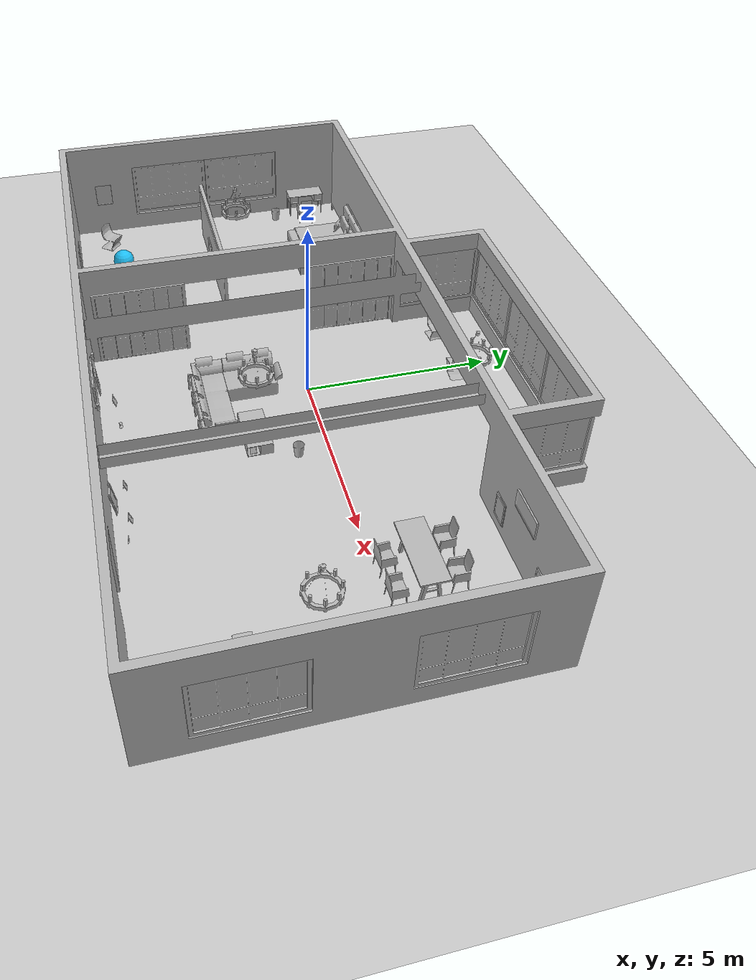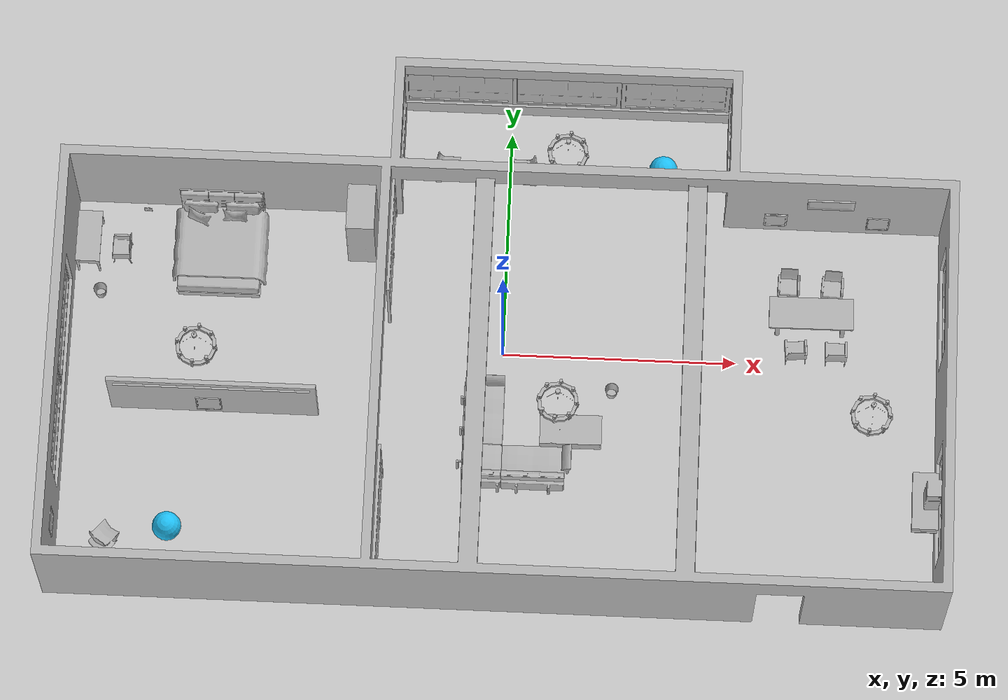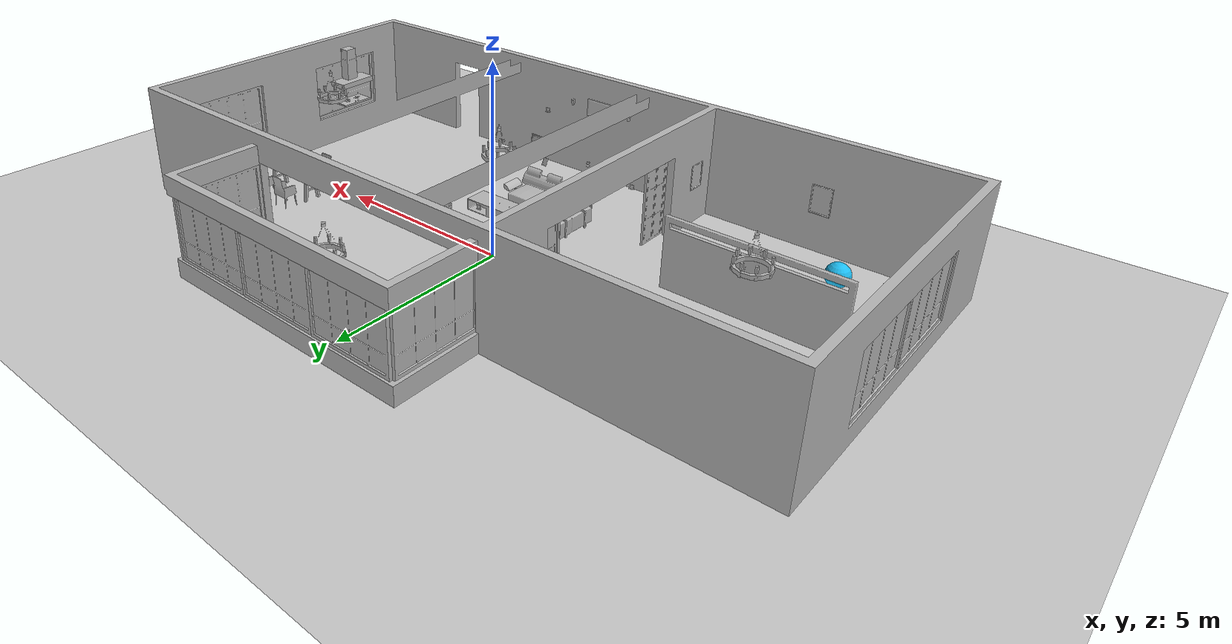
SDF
<sdf version="1.7">
 <world name="default">
  <gravity>0 0 -9.8</gravity>
  <physics type="ode"><max_step_size>0.01</max_step_size><real_time_factor>1</real_time_factor></physics>
  <plugin filename="gz-sim-physics-system" name="gz::sim::systems::Physics"/>
  <plugin filename="gz-sim-user-commands-system" name="gz::sim::systems::UserCommands"/>
  <plugin filename="gz-sim-scene-broadcaster-system" name="gz::sim::systems::SceneBroadcaster"/>
  <plugin filename="gz-sim-sensors-system" name="gz::sim::systems::Sensors">
   <render_engine>ogre2</render_engine>
  </plugin>
  <plugin filename="gz-sim-imu-system" name="gz::sim::systems::Imu"/>
  <model name="ground_plane">
   <static>true</static>
   <link name="link">
    <collision name="collision">
     <geometry><plane><normal>0 0 1</normal><size>200 200</size></plane></geometry>
    </collision>
    <visual name="visual"><geometry><plane><normal>0 0 1</normal><size>200 200</size></plane></geometry></visual>
   </link>
  </model>
  <light type="directional" name="sun">
   <cast_shadows>0</cast_shadows>
   <pose>-5 -3 10 0 0 0</pose>
   <diffuse>1 1 1 1</diffuse>
   <specular>1 1 1 1</specular>
   <direction>0 0 -1</direction>
  </light>
  <include>
   <uri>model://aws_robomaker_residential_Ball_01</uri>
   <name>Ball_01_001</name>
   <pose>3.295503 4.225674 0.318684 0 -0 0</pose>
   <static>true</static>
  </include>
  <include>
   <uri>model://aws_robomaker_residential_Ball_01</uri>
   <name>Ball_01_003</name>
   <pose>-6.945503 -4.22174 0.318684 0 -0 0</pose>
   <static>true</static>
  </include>
  <include>
   <uri>model://aws_robomaker_residential_Bed_01</uri>
   <name>Bed_01_001</name>
   <pose>-6.165067 2.030560 -0.000010 0 -0 0</pose>
   <static>true</static>
  </include>
  <include>
   <uri>model://aws_robomaker_residential_ChairA_01</uri>
   <name>ChairA_01_001</name>
   <pose>7.11516 0.209028 0.024685 1e-06 -0 -1.55607</pose>
   <static>true</static>
  </include>
  <include>
   <uri>model://aws_robomaker_residential_ChairA_01</uri>
   <name>ChairA_01_002</name>
   <pose>6.25506 0.219468 0.011308 0 0 -1.50414</pose>
   <static>true</static>
  </include>
  <include>
   <uri>model://aws_robomaker_residential_ChairA_01</uri>
   <name>ChairA_01_003</name>
   <pose>6.06678 1.68075 0.01 0 -0 1.56986</pose>
   <static>true</static>
  </include>
  <include>
   <uri>model://aws_robomaker_residential_ChairA_01</uri>
   <name>ChairA_01_004</name>
   <pose>7.00277 1.67074 0 0 -0 1.52363</pose>
   <static>true</static>
  </include>
  <include>
   <uri>model://aws_robomaker_residential_ChairA_01</uri>
   <name>ChairA_01_005</name>
   <pose>-8.270940 1.916650 0.036650 0 -0 0</pose>
   <static>true</static>
  </include>
  <include>
   <uri>model://aws_robomaker_residential_ChairD_01</uri>
   <name>ChairD_01_001</name>
   <pose>-1.380775 4.104456 0 0 -0 0</pose>
   <static>true</static>
  </include>
  <include>
   <uri>model://aws_robomaker_residential_ChairD_01</uri>
   <name>ChairD_01_002</name>
   <pose>0.325214 4.104456 0 0 -0 -3.138741</pose>
   <static>true</static>
  </include>
  <include>
   <uri>model://aws_robomaker_residential_ChairD_01</uri>
   <name>ChairD_01_003</name>
   <pose>-8.270775 -4.504456 0 0 -0 0.869673</pose>
   <static>true</static>
  </include>
  <include>
   <uri>model://aws_robomaker_residential_Chandelier_01</uri>
   <name>Chandelier_01_001</name>
   <pose>1.221061 4.155740 1.295000 0 -0 0</pose>
   <static>true</static>
  </include>
  <include>
   <uri>model://aws_robomaker_residential_Chandelier_01</uri>
   <name>Chandelier_01_002</name>
   <pose>-6.451061 -0.692040 1.810000 0 -0 0</pose>
   <static>true</static>
  </include>
  <include>
   <uri>model://aws_robomaker_residential_Chandelier_01</uri>
   <name>Chandelier_01_003</name>
   <pose>7.824061 -1.59 1.7510000 0 -0 0</pose>
   <static>true</static>
  </include>
  <include>
   <uri>model://aws_robomaker_residential_Chandelier_01</uri>
   <name>Chandelier_01_004</name>
   <pose>1.221061 -1.592040 1.7873000 0 -0 0</pose>
   <static>true</static>
  </include>
  <include>
   <uri>model://aws_robomaker_residential_SecurityCamera_01</uri>
   <name>SecurityCamera_01_001</name>
   <pose>0.842134 -4.996294 0.495067 0 -0 -2.841039</pose>
   <static>true</static>
  </include>
  <include>
   <uri>model://aws_robomaker_residential_CoffeeTable_01</uri>
   <name>CoffeeTable_01_001</name>
   <pose>1.512301 -1.733438 0.041983 0.000000 0.000000 0.01000</pose>
   <static>true</static>
  </include>
  <include>
   <uri>model://aws_robomaker_residential_CookingBench_01</uri>
   <name>CookingBench_01_001</name>
   <pose>9.038383 -3.351140 0.903610 0 -0 3.137133</pose>
   <static>true</static>
  </include>
  <include>
   <uri>model://aws_robomaker_residential_KitchenTable_01</uri>
   <name>KitchenTable_01_001</name>
   <pose>6.55269 0.951173 -0.000006 0 -0 -1.564130</pose>
   <static>true</static>
  </include>
  <include>
   <uri>model://aws_robomaker_residential_ReadingDesk_01</uri>
   <name>ReadingDesk_01_001</name>
   <pose>-8.987262 2.057058 0 0 -0 -0.004638</pose>
   <static>true</static>
  </include>
  <include>
   <uri>model://aws_robomaker_residential_FoldingDoor_01</uri>
   <name>FoldingDoor_01_001</name>
   <pose>-2.461096 1.844219 0.041881 0 -0 0</pose>
   <static>true</static>
  </include>
  <include>
   <uri>model://aws_robomaker_residential_FoldingDoor_01</uri>
   <name>FoldingDoor_01_002</name>
   <pose>-2.461096 -4.053320 0.041881 0 -0 0</pose>
   <static>true</static>
  </include>
  <include>
   <uri>model://aws_robomaker_residential_HouseWallB_01</uri>
   <name>HouseWallB_01_001</name>
   <static>true</static>
  </include>
  <include>
   <uri>model://aws_robomaker_residential_LightC_01</uri>
   <name>LightC_01_001</name>
   <pose>1.769567 -5.4443710 2.000000 0 -0 0</pose>
   <static>true</static>
  </include>
  <include>
   <uri>model://aws_robomaker_residential_LightC_01</uri>
   <name>LightC_01_002</name>
   <pose>-0.138245 -5.4443710 2.000000 0 -0 0</pose>
   <static>true</static>
  </include>
  <include>
   <uri>model://aws_robomaker_residential_PortraitA_01</uri>
   <name>PortraitA_01</name>
   <pose>-2.712360 -4.817539 1.00000 0 -0 1.566796</pose>
   <static>true</static>
  </include>
  <include>
   <uri>model://aws_robomaker_residential_PortraitB_01</uri>
   <name>PortraitB_01</name>
   <pose>-1.279683 -5.429630 0.0 -0.076901 0 -3.116718</pose>
   <static>true</static>
  </include>
  <include>
   <uri>model://aws_robomaker_residential_PortraitB_02</uri>
   <name>PortraitB_02</name>
   <pose>5.737017 3.080310 0.300000 0 -0 0</pose>
   <static>true</static>
  </include>
  <include>
   <uri>model://aws_robomaker_residential_PortraitB_03</uri>
   <name>PortraitB_03</name>
   <pose>3.071380 -5.349366 0.005494 -0.168428 0.0 3.104232</pose>
   <static>true</static>
  </include>
  <include>
   <uri>model://aws_robomaker_residential_PortraitA_02</uri>
   <name>PortraitA_02</name>
   <pose>7.937017 3.080310 0.300000 0 -0 3.14</pose>
   <static>true</static>
  </include>
  <include>
   <uri>model://aws_robomaker_residential_PortraitC_01</uri>
   <name>PortraitC_01</name>
   <pose>-9.294904 -4.526084 1.000000 0 -0 1.554734</pose>
   <static>true</static>
  </include>
  <include>
   <uri>model://aws_robomaker_residential_PortraitD_01</uri>
   <name>PortraitD_01</name>
   <pose>0.789763 -5.478725 1.800000 0 -0 3.138531</pose>
   <static>true</static>
  </include>
  <include>
   <uri>model://aws_robomaker_residential_PortraitD_02</uri>
   <name>PortraitD_02</name>
   <pose>6.870181 3.080310 1.488439 0 -0 0</pose>
   <static>true</static>
  </include>
  <include>
   <uri>model://aws_robomaker_residential_PortraitE_01</uri>
   <name>PortraitE_01</name>
   <pose>-5.773094 -5.492466 1.000000 0 -0 3.132627</pose>
   <static>true</static>
  </include>
  <include>
   <uri>model://aws_robomaker_residential_PortraitE_02</uri>
   <name>PortraitE_02</name>
   <pose>-6.193025 -1.590208 0.3 0 -0 0.004290</pose>
   <static>true</static>
  </include>
  <include>
   <uri>model://aws_robomaker_residential_DeskPortraitA_01</uri>
   <name>DeskPortraitA_01</name>
   <pose>-0.036864 -5.110156 0.498660 0 -0 2.927784</pose>
   <static>true</static>
  </include>
  <include>
   <uri>model://aws_robomaker_residential_DeskPortraitA_02</uri>
   <name>DeskPortraitA_02</name>
   <pose>2.046082 -1.892926 0.0703880 -0.018328 -0.000441 1.576216</pose>
   <static>true</static>
  </include>
  <include>
   <uri>model://aws_robomaker_residential_DeskPortraitC_01</uri>
   <name>DeskPortraitC_01</name>
   <pose>-7.746377 2.731075 0.694620 0.000488 -0.000359 -0.055499</pose>
   <static>true</static>
  </include>
  <include>
   <uri>model://aws_robomaker_residential_DeskPortraitC_02</uri>
   <name>DeskPortraitC_02</name>
   <pose>0.964613 -1.586951 0.127676 0.001614 -0.000545 -1.578699</pose>
   <static>true</static>
  </include>
  <include>
   <uri>model://aws_robomaker_residential_DeskPortraitD_01</uri>
   <name>DeskPortraitD_01</name>
   <pose>2.645560 -5.376225 1.573738 0 -0 -3.112826</pose>
   <static>true</static>
  </include>
  <include>
   <uri>model://aws_robomaker_residential_DeskPortraitD_02</uri>
   <name>DeskPortraitD_02</name>
   <pose>-0.589211 -5.109890 0.192145 -0.000015 -0.000174 -3.112544</pose>
   <static>true</static>
  </include>
  <include>
   <uri>model://aws_robomaker_residential_DeskPortraitD_03</uri>
   <name>DeskPortraitD_03</name>
   <pose>1.826729 -1.464881 0.126208 0.000010 0.000006 -3.114380</pose>
   <static>true</static>
  </include>
  <include>
   <uri>model://aws_robomaker_residential_DeskPortraitD_04</uri>
   <name>DeskPortraitD_04</name>
   <pose>4.302132 -5.176568 0.202496 0.007118 -0.000001 3.046683</pose>
   <static>true</static>
  </include>
  <include>
   <uri>model://aws_robomaker_residential_DeskPortraitB_01</uri>
   <name>DeskPortraitB_01</name>
   <pose>3.547376 -5.083898 -0.012660 -0.336622 -0.000001 3.046741</pose>
   <static>true</static>
  </include>
  <include>
   <uri>model://aws_robomaker_residential_DeskPortraitB_02</uri>
   <name>DeskPortraitB_02</name>
   <pose>2.486270 -5.102525 -0.012660 -0.336621 0.000000 3.046798</pose>
   <static>true</static>
  </include>
  <include>
   <uri>model://aws_robomaker_residential_Rangehood_01</uri>
   <name>Rangehood_01_001</name>
   <pose>9.019794 -3.369940 1.507605 0 -0 0</pose>
   <static>true</static>
  </include>
  <include>
   <uri>model://aws_robomaker_residential_SofaC_01</uri>
   <name>SofaC_01_001</name>
   <pose>0.330699 -1.902792 0.065992 0.000000 0.000000 1.571733</pose>
   <static>true</static>
  </include>
  <include>
   <uri>model://aws_robomaker_residential_Trash_01</uri>
   <name>Trash_01_001</name>
   <pose>2.360151 -0.796238 0.011 0 -0 0</pose>
   <static>true</static>
  </include>
  <include>
   <uri>model://aws_robomaker_residential_Trash_01</uri>
   <name>Trash_01_002</name>
   <pose>-8.704151 1.00058 0.011 0 -0 0</pose>
   <static>true</static>
  </include>
  <include>
   <uri>model://aws_robomaker_residential_RoomWall_01</uri>
   <name>RoomWall_01_001</name>
   <pose>-6.097550 -1.496180 0.028124 0 -0 0</pose>
   <static>true</static>
  </include>
  <include>
   <uri>model://aws_robomaker_residential_Wardrobe_01</uri>
   <name>Wardrobe_01_001</name>
   <pose>-3.146710 2.476204 0.000704 0 -0 -1.569673</pose>
   <static>true</static>
  </include>
  <include>
   <uri>model://aws_robomaker_residential_RoomWindow_01</uri>
   <name>RoomWindow_01_001</name>
   <pose>-9.418600 -0.026285 0.502739 0 -0 0</pose>
   <static>true</static>
  </include>
  <include>
   <uri>model://aws_robomaker_residential_RoomWindow_01</uri>
   <name>RoomWindow_01_002</name>
   <pose>-9.418600 -2.374090 0.502739 0 -0 0</pose>
   <static>true</static>
  </include>
  <include>
   <uri>model://aws_robomaker_residential_RoomWindow_01</uri>
   <name>RoomWindow_01_003</name>
   <pose>9.422616 -3.373981 0.502739 0 -0 -3.136099</pose>
   <static>true</static>
  </include>
  <include>
   <uri>model://aws_robomaker_residential_RoomWindow_01</uri>
   <name>RoomWindow_01_004</name>
   <pose>9.422558 0.968520 0.496581 0 -0 -3.136099</pose>
   <static>true</static>
  </include>
  <include>
   <uri>model://aws_robomaker_residential_RoomWindow_01</uri>
   <name>RoomWindow_01_005</name>
   <pose>4.722317 4.470281 0.502739 0 -0 -3.136099</pose>
   <static>true</static>
  </include>
  <include>
   <uri>model://aws_robomaker_residential_RoomWindow_01</uri>
   <name>RoomWindow_01_006</name>
   <pose>3.488520 5.600688 0.502739 0 -0 -1.566274</pose>
   <static>true</static>
  </include>
  <include>
   <uri>model://aws_robomaker_residential_RoomWindow_01</uri>
   <name>RoomWindow_01_007</name>
   <pose>1.140949 5.600688 0.502739 0 -0 -1.566274</pose>
   <static>true</static>
  </include>
  <include>
   <uri>model://aws_robomaker_residential_RoomWindow_01</uri>
   <name>RoomWindow_01_008</name>
   <pose>-1.199340 5.600688 0.502739 0 -0 -1.566274</pose>
   <static>true</static>
  </include>
  <include>
   <uri>model://aws_robomaker_residential_RoomWindow_01</uri>
   <name>RoomWindow_01_009</name>
   <pose>-2.396624 4.387607 0.502739 0 -0 0</pose>
   <static>true</static>
  </include>
 </world>
</sdf>

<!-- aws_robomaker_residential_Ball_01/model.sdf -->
<sdf version="1.6">
  <model name="aws_robomaker_residential_Ball_01">
    <link name="link">
      <inertial>
        <mass>0.12</mass>
        <!-- 2r = 62cm -->
          <inertia>
            <ixx>0.030752</ixx>
            <ixy>0</ixy>
            <ixz>0</ixz>
            <iyy>0.030752</iyy>
            <iyz>0</iyz>
            <izz>0.030752</izz>
          </inertia>
      </inertial>
      <collision name="collision">

        <geometry>
          <sphere>
            <radius>0.31 </radius>
          </sphere>

        </geometry>

        <surface>
          <friction>
            <ode>
              <mu>0.85</mu>
              <mu2>0.85</mu2>
            </ode>
          </friction>

        <!-- Add some bounciness to the ball -->
          <contact>
            <ode>
              <kd>8500</kd>
              <max_vel>5.1</max_vel>
            </ode>
          </contact>
        </surface>

      </collision>
      <visual name="visual">
	    <geometry>
          <sphere>
            <radius>0.31 </radius>
          </sphere>
      </geometry>
          <material>
            <diffuse>0.12 0.76 0.97 1</diffuse>
            <ambient>0.03 0.21 0.27 1</ambient>
          </material>
      <meta> <layer> 1 </layer></meta>
</visual>
    </link>
  </model>
</sdf>

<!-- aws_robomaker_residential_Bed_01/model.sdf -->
<sdf version="1.6">
  <model name="aws_robomaker_residential_Bed_01">
    <link name="link">
      <inertial>
        <mass>22.6</mass>
      </inertial>
      <collision name="collision">
        <geometry>
          <mesh>
            <uri>model://aws_robomaker_residential_Bed_01/meshes/aws_Bed_01_collision.DAE</uri>
            <scale>1 1 1</scale>
          </mesh>
        </geometry>
      </collision>
      <visual name="visual">
	    <geometry>
          <mesh>
            <uri>model://aws_robomaker_residential_Bed_01/meshes/aws_Bed_01_visual.DAE</uri>
          </mesh>
        </geometry>
      <meta> <layer> 1 </layer></meta>
</visual>
    </link>
  <static>1</static>
  </model>
</sdf>

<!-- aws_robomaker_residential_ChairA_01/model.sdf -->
<sdf version="1.6">
  <model name="aws_robomaker_residential_ChairA_01">
    <link name="link">
      <inertial>
          <mass>7.5</mass>
          <inertia>
            <ixy>0</ixy>
            <ixz>0</ixz>
            <iyz>0</iyz>
            <ixx>0.217</ixx>
            <iyy>0.217</iyy>
            <izz>0.067</izz>
          </inertia>
      </inertial>

      <collision name="collision">
        <geometry>
          <mesh>
            <uri>model://aws_robomaker_residential_ChairA_01/meshes/aws_ChairA_01_collision.DAE</uri>
            <scale>1 1 1</scale>
          </mesh>
        </geometry>
      </collision>
      <visual name="visual">
	    <geometry>
          <mesh>
            <uri>model://aws_robomaker_residential_ChairA_01/meshes/aws_ChairA_01_visual.DAE</uri>
          </mesh>
        </geometry>
      <meta> <layer> 1 </layer></meta>
</visual>
    </link>
  </model>
</sdf>

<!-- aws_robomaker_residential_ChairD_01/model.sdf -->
<sdf version="1.6">
  <model name="aws_robomaker_residential_ChairD_01">
    <link name="link">

      <inertial>
        <mass>4.5</mass>
          <inertia>
            <ixy>0</ixy>
            <ixz>0</ixz>
            <iyz>0</iyz>
            <ixx>0.217</ixx>
            <iyy>0.217</iyy>
            <izz>0.067</izz>
          </inertia>
      </inertial>

      <collision name="collision">

        <geometry>
          <mesh>
            <uri>model://aws_robomaker_residential_ChairD_01/meshes/aws_ChairD_01_collision.DAE</uri>
            <scale>1 1 1</scale>
          </mesh>
        </geometry>

      </collision>
      <visual name="visual">
	    <geometry>
          <mesh>
            <uri>model://aws_robomaker_residential_ChairD_01/meshes/aws_ChairD_01_visual.DAE</uri>
          </mesh>
        </geometry>
      <meta> <layer> 1 </layer></meta>
</visual>
    </link>
  </model>
</sdf>

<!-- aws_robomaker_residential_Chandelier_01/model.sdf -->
<sdf version="1.6">
  <model name="aws_robomaker_residential_Chandelier_01">
    <link name="link">
      <inertial>
        <mass>1</mass>
      </inertial>
      <collision name="collision">
        <geometry>
          <mesh>
            <uri>meshes/aws_Chandelier_01_collision.DAE</uri>
            <scale>1 1 1</scale>
          </mesh>
        </geometry>
      </collision>
      <visual name="visual">
	    <geometry>
          <mesh>
            <uri>meshes/aws_Chandelier_01_visual.DAE</uri>
          </mesh>
        </geometry>
      <meta> <layer> 2 </layer></meta>
</visual>
    </link>
	<static>1</static>
  </model>
</sdf>

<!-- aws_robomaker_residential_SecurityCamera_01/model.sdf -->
<sdf version="1.6">
  <model name="aws_robomaker_residential_SecurityCamera_01">
    <link name="link">
      <inertial>
        <mass>1</mass>
        <inertia>
          <ixx>18.2222</ixx>
          <ixy>0</ixy>
          <ixz>0</ixz>
          <iyy>18.2222</iyy>
          <iyz>0</iyz>
          <izz>0.0018767</izz>
        </inertia>
      </inertial>
      <collision name="collision">
        <geometry>
          <mesh>
            <uri>meshes/aws_SecurityCamera_01_collision.DAE</uri>
            <scale>1 1 1</scale>
          </mesh>
        </geometry>
      </collision>
      <visual name="visual">
	    <geometry>
          <mesh>
            <uri>meshes/aws_SecurityCamera_01_visual.DAE</uri>
          </mesh>
        </geometry>
        <meta>
          <layer>2</layer>
        </meta>
      </visual>
    </link>
  </model>
</sdf>

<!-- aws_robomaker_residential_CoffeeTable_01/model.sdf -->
<sdf version="1.6">
  <model name="aws_robomaker_residential_CoffeeTable_01">
    <link name="link">
      <inertial>
        <mass>21.7</mass>

        <inertia>
          <ixx>0.8137499999999998</ixx>
          <ixy>0</ixy>
          <ixz>0</ixz>
          <iyy>2.76675</iyy>
          <iyz>0</iyz>
          <izz>3.254</izz>
        </inertia>

      </inertial>

      <collision name="collision">
        <geometry>
          <mesh>
            <uri>model://aws_robomaker_residential_CoffeeTable_01/meshes/aws_CoffeeTable_01_collision.DAE</uri>
            <scale>1 1 1</scale>
          </mesh>
        </geometry>

        <surface>
          <contact>
            <ode>
              <max_vel>0.01</max_vel>
            </ode>
          </contact>
         </surface>
      </collision>

      <visual name="visual">
	    <geometry>
          <mesh>
            <uri>model://aws_robomaker_residential_CoffeeTable_01/meshes/aws_CoffeeTable_01_visual.DAE</uri>
          </mesh>
        </geometry>
      <meta> <layer> 1 </layer></meta>
</visual>
    </link>
    <static>1</static>
  </model>
</sdf>

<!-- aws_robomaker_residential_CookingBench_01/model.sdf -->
<sdf version="1.6">
  <model name="aws_robomaker_residential_CookingBench_01">
    <link name="link">
      <inertial>
        <mass>1</mass>
      </inertial>
      <collision name="collision">
        <geometry>
          <mesh>
            <uri>model://aws_robomaker_residential_CookingBench_01/meshes/aws_CookingBench_01_collision.DAE</uri>
            <scale>1 1 1</scale>
          </mesh>
        </geometry>
      </collision>
      <visual name="visual">
	    <geometry>
          <mesh>
            <uri>model://aws_robomaker_residential_CookingBench_01/meshes/aws_CookingBench_01_visual.DAE</uri>
          </mesh>
        </geometry>
      <meta> <layer> 1 </layer></meta>
</visual>
    </link>
  </model>
</sdf>

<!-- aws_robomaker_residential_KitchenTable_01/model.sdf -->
<sdf version="1.6">
  <model name="aws_robomaker_residential_KitchenTable_01">
    <link name="link">
      <inertial>
        <mass>12.3</mass>
      </inertial>
      <collision name="collision">
        <geometry>
          <mesh>
            <uri>model://aws_robomaker_residential_KitchenTable_01/meshes/aws_KitchenTable_01_collision.DAE</uri>
            <scale>1 1 1</scale>
          </mesh>
        </geometry>
      </collision>
      <visual name="visual">
	    <geometry>
          <mesh>
            <uri>model://aws_robomaker_residential_KitchenTable_01/meshes/aws_KitchenTable_01_visual.DAE</uri>
          </mesh>
        </geometry>
      <meta> <layer> 1 </layer></meta>
</visual>
    </link>
  </model>
</sdf>

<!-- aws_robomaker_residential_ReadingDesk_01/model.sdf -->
<sdf version="1.6">
  <model name="aws_robomaker_residential_ReadingDesk_01">
    <link name="link">
      <inertial>
        <mass>14.6</mass>
          <inertia>
            <ixx>0.78</ixx>
            <ixy>0</ixy>
            <ixz>0</ixz>
            <iyy>0.273</iyy>
            <iyz>0</iyz>
            <izz> 0.57375</izz>
          </inertia>
      </inertial>
      <collision name="collision">
        <geometry>
          <mesh>
            <uri>model://aws_robomaker_residential_ReadingDesk_01/meshes/aws_ReadingDesk_01_collision.DAE</uri>
            <scale>1 1 1</scale>
          </mesh>
        </geometry>
      </collision>
      <visual name="visual">
	    <geometry>
          <mesh>
            <uri>model://aws_robomaker_residential_ReadingDesk_01/meshes/aws_ReadingDesk_01_visual.DAE</uri>
          </mesh>
        </geometry>
      <meta> <layer> 1 </layer></meta>
</visual>
    </link>
  </model>
</sdf>

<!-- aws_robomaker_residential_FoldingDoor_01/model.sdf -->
<sdf version="1.6">
  <model name="aws_robomaker_residential_FoldingDoor_01">
    <link name="link">
      <inertial>
        <mass>12.000000</mass>
      <inertia><ixx>4.000900</ixx><iyy>4.202500</iyy><izz>0.203400</izz><ixy>0.0</ixy><ixz>0.0</ixz><iyz>0.0</iyz></inertia></inertial>
      <collision name="collision">
        <geometry>
          <mesh>
            <uri>meshes/aws_FoldingDoor_01_collision.DAE</uri>
            <scale>1 1 1</scale>
          </mesh>
        </geometry>
      </collision>
      <visual name="visual">
	    <geometry>
          <mesh>
            <uri>meshes/aws_FoldingDoor_01_visual.DAE</uri>
          </mesh>
        </geometry>
      <meta> <layer> 2 </layer></meta>
</visual>
    </link>
	<static>1</static>
  </model>
</sdf>

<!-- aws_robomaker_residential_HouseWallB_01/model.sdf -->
<sdf version="1.6">
  <model name="aws_robomaker_residential_HouseWallB_01">
    <link name="link">
      <inertial>
        <mass>1</mass>
      </inertial>
      <collision name="collision">
        <geometry>
          <mesh>
            <uri>model://aws_robomaker_residential_HouseWallB_01/meshes/aws_HouseWallB_01_collision.DAE</uri>
            <scale>1 1 1</scale>
          </mesh>
        </geometry>
      </collision>
      <visual name="visual">
	    <geometry>
          <mesh>
            <uri>model://aws_robomaker_residential_HouseWallB_01/meshes/aws_HouseWallB_01_visual.DAE</uri>
          </mesh>
        </geometry>
      <meta> <layer> 2 </layer></meta>
</visual>
    </link>
<static>1</static>
  </model>
</sdf>

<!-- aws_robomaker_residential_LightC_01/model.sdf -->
<sdf version="1.6">
  <model name="aws_robomaker_residential_LightC_01">
    <link name="link">
      <inertial>
        <mass>1</mass>
      </inertial>
      <collision name="collision">
        <geometry>
          <mesh>
            <uri>meshes/aws_LightC_01_collision.DAE</uri>
            <scale>1 1 1</scale>
          </mesh>
        </geometry>
      </collision>
      <visual name="visual">
	    <geometry>
          <mesh>
            <uri>meshes/aws_LightC_01_visual.DAE</uri>
          </mesh>
        </geometry>
      <meta> <layer> 2 </layer></meta>
</visual>
    </link>
	<static>1</static>
  </model>
</sdf>

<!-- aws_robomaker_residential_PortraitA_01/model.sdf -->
<sdf version="1.6">
  <model name="aws_robomaker_residential_PortraitA_01">
    <link name="link">
      <inertial>
        <mass>1</mass>
      </inertial>
      <collision name="collision">
        <geometry>
          <mesh>
            <uri>meshes/aws_PortraitA_01_collision.DAE</uri>
            <scale>1 1 1</scale>
          </mesh>
        </geometry>
      </collision>
      <visual name="visual">
	    <geometry>
          <mesh>
            <uri>meshes/aws_PortraitA_01_visual.DAE</uri>
          </mesh>
        </geometry>
      <meta> <layer> 2 </layer></meta>
</visual>
    </link>
	<static>1</static>
  </model>
</sdf>

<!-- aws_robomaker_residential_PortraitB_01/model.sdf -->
<sdf version="1.6">
  <model name="aws_robomaker_residential_PortraitB_01">
    <link name="link">
      <inertial>
        <mass>1</mass>
      </inertial>
      <collision name="collision">
        <geometry>
          <mesh>
            <uri>meshes/aws_PortraitB_01_collision.DAE</uri>
            <scale>1 1 1</scale>
          </mesh>
        </geometry>
      </collision>
      <visual name="visual">
	    <geometry>
          <mesh>
            <uri>meshes/aws_PortraitB_01_visual.DAE</uri>
          </mesh>
        </geometry>
      <meta> <layer> 2 </layer></meta>
</visual>
    </link>
	<static>1</static>
  </model>
</sdf>

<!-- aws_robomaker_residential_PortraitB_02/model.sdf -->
<sdf version="1.6">
  <model name="aws_robomaker_residential_PortraitB_02">
    <link name="link">
      <inertial>
        <mass>1</mass>
      </inertial>
      <collision name="collision">
        <geometry>
          <mesh>
            <uri>meshes/aws_PortraitB_01_collision.DAE</uri>
            <scale>1 1 1</scale>
          </mesh>
        </geometry>
      </collision>
      <visual name="visual">
	    <geometry>
          <mesh>
            <uri>meshes/aws_PortraitB_01_visual.DAE</uri>
          </mesh>
        </geometry>
      <meta> <layer> 2 </layer></meta>
</visual>
    </link>
	<static>1</static>
  </model>
</sdf>

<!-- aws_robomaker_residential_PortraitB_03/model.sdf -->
<sdf version="1.6">
  <model name="aws_robomaker_residential_PortraitB_03">
    <link name="link">
      <inertial>
        <mass>1</mass>
      </inertial>
      <collision name="collision">
        <geometry>
          <mesh>
            <uri>meshes/aws_PortraitB_01_collision.DAE</uri>
            <scale>1 1 1</scale>
          </mesh>
        </geometry>
      </collision>
      <visual name="visual">
	    <geometry>
          <mesh>
            <uri>meshes/aws_PortraitB_01_visual.DAE</uri>
          </mesh>
        </geometry>
      <meta> <layer> 2 </layer></meta>
</visual>
    </link>
	<static>1</static>
  </model>
</sdf>

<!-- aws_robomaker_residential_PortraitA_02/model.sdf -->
<sdf version="1.6">
  <model name="aws_robomaker_residential_PortraitA_02">
    <link name="link">
      <inertial>
        <mass>1</mass>
      </inertial>
      <collision name="collision">
        <geometry>
          <mesh>
            <uri>meshes/aws_PortraitA_01_collision.DAE</uri>
            <scale>1 1 1</scale>
          </mesh>
        </geometry>
      </collision>
      <visual name="visual">
	    <geometry>
          <mesh>
            <uri>meshes/aws_PortraitA_01_visual.DAE</uri>
          </mesh>
        </geometry>
      <meta> <layer> 2 </layer></meta>
</visual>
    </link>
	<static>1</static>
  </model>
</sdf>

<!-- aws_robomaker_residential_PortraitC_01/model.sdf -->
<sdf version="1.6">
  <model name="aws_robomaker_residential_PortraitC_01">
    <link name="link">
      <inertial>
        <mass>1</mass>
      </inertial>
      <collision name="collision">
        <geometry>
          <mesh>
            <uri>meshes/aws_PortraitC_01_collision.DAE</uri>
            <scale>1 1 1</scale>
          </mesh>
        </geometry>
      </collision>
      <visual name="visual">
	    <geometry>
          <mesh>
            <uri>meshes/aws_PortraitC_01_visual.DAE</uri>
          </mesh>
        </geometry>
      <meta> <layer> 2 </layer></meta>
</visual>
    </link>
	<static>1</static>
  </model>
</sdf>

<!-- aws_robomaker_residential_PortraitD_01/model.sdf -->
<sdf version="1.6">
  <model name="aws_robomaker_residential_PortraitD_01">
    <link name="link">

      <inertial>
        <mass>1.5</mass>
      </inertial>

      <collision name="collision">
        <geometry>
          <mesh>
            <uri>meshes/aws_PortraitD_01_collision.DAE</uri>
            <scale>1 1 1</scale>
          </mesh>
        </geometry>

      </collision>

      <visual name="visual">
	    <geometry>
          <mesh>
            <uri>meshes/aws_PortraitD_01_visual.DAE</uri>
          </mesh>
        </geometry>
      <meta> <layer> 2 </layer></meta>
</visual>
    </link>
	<static>1</static>
  </model>
</sdf>

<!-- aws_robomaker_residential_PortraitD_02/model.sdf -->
<sdf version="1.6">
  <model name="aws_robomaker_residential_PortraitD_02">
    <link name="link">

      <inertial>
        <mass>1.5</mass>
      </inertial>

      <collision name="collision">
        <geometry>
          <mesh>
            <uri>meshes/aws_PortraitD_01_collision.DAE</uri>
            <scale>1 1 1</scale>
          </mesh>
        </geometry>

      </collision>

      <visual name="visual">
	    <geometry>
          <mesh>
            <uri>meshes/aws_PortraitD_01_visual.DAE</uri>
          </mesh>
        </geometry>
      <meta> <layer> 2 </layer></meta>
</visual>
    </link>
	<static>1</static>
  </model>
</sdf>

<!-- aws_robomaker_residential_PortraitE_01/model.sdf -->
<sdf version="1.6">
  <model name="aws_robomaker_residential_PortraitE_01">
    <link name="link">
      <inertial>
        <mass>1</mass>
      </inertial>
      <collision name="collision">
        <geometry>
          <mesh>
            <uri>meshes/aws_PortraitE_01_collision.DAE</uri>
            <scale>1 1 1</scale>
          </mesh>
        </geometry>
      </collision>
      <visual name="visual">
	    <geometry>
          <mesh>
            <uri>meshes/aws_PortraitE_01_visual.DAE</uri>
          </mesh>
        </geometry>
      <meta> <layer> 2 </layer></meta>
</visual>
    </link>
	<static>1</static>
  </model>
</sdf>

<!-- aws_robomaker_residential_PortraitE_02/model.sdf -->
<sdf version="1.6">
  <model name="aws_robomaker_residential_PortraitE_02">
    <link name="link">
      <inertial>
        <mass>1</mass>
      </inertial>
      <collision name="collision">
        <geometry>
          <mesh>
            <uri>meshes/aws_PortraitE_01_collision.DAE</uri>
            <scale>1 1 1</scale>
          </mesh>
        </geometry>
      </collision>
      <visual name="visual">
	    <geometry>
          <mesh>
            <uri>meshes/aws_PortraitE_01_visual.DAE</uri>
          </mesh>
        </geometry>
      <meta> <layer> 2 </layer></meta>
</visual>
    </link>
	<static>1</static>
  </model>
</sdf>

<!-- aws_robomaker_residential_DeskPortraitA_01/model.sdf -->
<sdf version="1.6">
  <model name="aws_robomaker_residential_DeskPortraitA_01">
    <link name="link">

      <inertial>
        <mass>1</mass>
        <inertia>
            <ixx>0.0835</ixx>
            <ixy>0</ixy>
            <ixz>0</ixz>
            <iyy>0.16</iyy>
            <iyz>0</iyz>
            <izz>0.08347</izz>
        </inertia>
      </inertial>

      <collision name="collision">
        <geometry>
          <mesh>
            <uri>meshes/aws_DeskPortraitA_01_collision.DAE</uri>
            <scale>1 1 1</scale>
          </mesh>
        </geometry>
      </collision>

      <visual name="visual">
	    <geometry>
          <mesh>
            <uri>meshes/aws_DeskPortraitA_01_visual.DAE</uri>
          </mesh>
        </geometry>
      <meta> <layer> 1 </layer></meta>
</visual>
    </link>
  </model>
</sdf>

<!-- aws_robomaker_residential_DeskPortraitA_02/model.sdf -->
<sdf version="1.6">
  <model name="aws_robomaker_residential_DeskPortraitA_02">
    <link name="link">

      <inertial>
        <mass>1</mass>
        <inertia>
            <ixx>0.0835</ixx>
            <ixy>0</ixy>
            <ixz>0</ixz>
            <iyy>0.16</iyy>
            <iyz>0</iyz>
            <izz>0.08347</izz>
        </inertia>
      </inertial>

      <collision name="collision">
        <geometry>
          <mesh>
            <uri>meshes/aws_DeskPortraitA_01_collision.DAE</uri>
            <scale>1 1 1</scale>
          </mesh>
        </geometry>
      </collision>

      <visual name="visual">
	    <geometry>
          <mesh>
            <uri>meshes/aws_DeskPortraitA_01_visual.DAE</uri>
          </mesh>
        </geometry>
      <meta> <layer> 1 </layer></meta>
</visual>
    </link>
  </model>
</sdf>

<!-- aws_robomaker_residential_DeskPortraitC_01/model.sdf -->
<sdf version="1.6">
  <model name="aws_robomaker_residential_DeskPortraitC_01">
    <link name="link">
      <inertial>
        <mass>1</mass>
        <inertia>
            <ixx>0.0835</ixx>
            <ixy>0</ixy>
            <ixz>0</ixz>
            <iyy>0.16</iyy>
            <iyz>0</iyz>
            <izz>0.08347</izz>
        </inertia>
      </inertial>
      <collision name="collision">
        <geometry>
          <mesh>
            <uri>meshes/aws_DeskPortraitC_01_collision.DAE</uri>
            <scale>1 1 1</scale>
          </mesh>
        </geometry>
      </collision>
      <visual name="visual">
	    <geometry>
          <mesh>
            <uri>meshes/aws_DeskPortraitC_01_visual.DAE</uri>
          </mesh>
        </geometry>
      <meta> <layer> 1 </layer></meta>
</visual>
    </link>
  </model>
</sdf>

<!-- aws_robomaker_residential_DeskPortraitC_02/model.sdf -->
<sdf version="1.6">
  <model name="aws_robomaker_residential_DeskPortraitC_02">
    <link name="link">
      <inertial>
        <mass>1</mass>
        <inertia>
            <ixx>0.0835</ixx>
            <ixy>0</ixy>
            <ixz>0</ixz>
            <iyy>0.16</iyy>
            <iyz>0</iyz>
            <izz>0.08347</izz>
        </inertia>
      </inertial>
      <collision name="collision">
        <geometry>
          <mesh>
            <uri>meshes/aws_DeskPortraitC_01_collision.DAE</uri>
            <scale>1 1 1</scale>
          </mesh>
        </geometry>
      </collision>
      <visual name="visual">
	    <geometry>
          <mesh>
            <uri>meshes/aws_DeskPortraitC_01_visual.DAE</uri>
          </mesh>
        </geometry>
      <meta> <layer> 1 </layer></meta>
</visual>
    </link>
  </model>
</sdf>

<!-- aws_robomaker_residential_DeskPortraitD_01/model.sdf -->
<sdf version="1.6">
  <model name="aws_robomaker_residential_DeskPortraitD_01">
    <link name="link">
      <inertial>
        <mass>0.4</mass>
          <inertia>
            <ixx>0.0616</ixx>
            <ixy>0</ixy>
            <ixz>0</ixz>
            <iyy>0.1313</iyy>
            <iyz>0</iyz>
            <izz>0.0803</izz>
          </inertia>
      </inertial>

      <collision name="collision">
        <geometry>
          <mesh>
            <uri>meshes/aws_DeskPortraitD_01_collision.DAE</uri>
            <scale>1 1 1</scale>
          </mesh>
        </geometry>

        <surface>
          <friction>
            <ode>
              <mu>0.7</mu>
              <mu2>0.7</mu2>
            </ode>
          </friction>

          <contact>
            <ode>
              <kd>28500</kd>
            </ode>
          </contact>

        </surface>

      </collision>

      <visual name="visual">
	    <geometry>
          <mesh>
            <uri>meshes/aws_DeskPortraitD_01_visual.DAE</uri>
          </mesh>
        </geometry>
      <meta> <layer> 1 </layer></meta>
</visual>
    </link>
  </model>
</sdf>

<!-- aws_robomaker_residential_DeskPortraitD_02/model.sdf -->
<sdf version="1.6">
  <model name="aws_robomaker_residential_DeskPortraitD_02">
    <link name="link">
      <inertial>
        <mass>0.4</mass>
          <inertia>
            <ixx>0.0616</ixx>
            <ixy>0</ixy>
            <ixz>0</ixz>
            <iyy>0.1313</iyy>
            <iyz>0</iyz>
            <izz>0.0803</izz>
          </inertia>
      </inertial>

      <collision name="collision">
        <geometry>
          <mesh>
            <uri>meshes/aws_DeskPortraitD_01_collision.DAE</uri>
            <scale>1 1 1</scale>
          </mesh>
        </geometry>

        <surface>
          <friction>
            <ode>
              <mu>0.7</mu>
              <mu2>0.7</mu2>
            </ode>
          </friction>

          <contact>
            <ode>
              <kd>28500</kd>
            </ode>
          </contact>

        </surface>

      </collision>

      <visual name="visual">
	    <geometry>
          <mesh>
            <uri>meshes/aws_DeskPortraitD_01_visual.DAE</uri>
          </mesh>
        </geometry>
      <meta> <layer> 1 </layer></meta>
</visual>
    </link>
  </model>
</sdf>

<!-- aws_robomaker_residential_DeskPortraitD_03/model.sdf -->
<sdf version="1.6">
  <model name="aws_robomaker_residential_DeskPortraitD_03">
    <link name="link">
      <inertial>
        <mass>0.4</mass>
          <inertia>
            <ixx>0.0616</ixx>
            <ixy>0</ixy>
            <ixz>0</ixz>
            <iyy>0.1313</iyy>
            <iyz>0</iyz>
            <izz>0.0803</izz>
          </inertia>
      </inertial>

      <collision name="collision">
        <geometry>
          <mesh>
            <uri>meshes/aws_DeskPortraitD_01_collision.DAE</uri>
            <scale>1 1 1</scale>
          </mesh>
        </geometry>

        <surface>
          <friction>
            <ode>
              <mu>0.7</mu>
              <mu2>0.7</mu2>
            </ode>
          </friction>

          <contact>
            <ode>
              <kd>28500</kd>
            </ode>
          </contact>

        </surface>

      </collision>

      <visual name="visual">
	    <geometry>
          <mesh>
            <uri>meshes/aws_DeskPortraitD_01_visual.DAE</uri>
          </mesh>
        </geometry>
      <meta> <layer> 1 </layer></meta>
</visual>
    </link>
  </model>
</sdf>

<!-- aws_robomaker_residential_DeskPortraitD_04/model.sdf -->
<sdf version="1.6">
  <model name="aws_robomaker_residential_DeskPortraitD_04">
    <link name="link">
      <inertial>
        <mass>0.4</mass>
          <inertia>
            <ixx>0.0616</ixx>
            <ixy>0</ixy>
            <ixz>0</ixz>
            <iyy>0.1313</iyy>
            <iyz>0</iyz>
            <izz>0.0803</izz>
          </inertia>
      </inertial>

      <collision name="collision">
        <geometry>
          <mesh>
            <uri>meshes/aws_DeskPortraitD_01_collision.DAE</uri>
            <scale>1 1 1</scale>
          </mesh>
        </geometry>

        <surface>
          <friction>
            <ode>
              <mu>0.7</mu>
              <mu2>0.7</mu2>
            </ode>
          </friction>

          <contact>
            <ode>
              <kd>28500</kd>
            </ode>
          </contact>

        </surface>

      </collision>

      <visual name="visual">
	    <geometry>
          <mesh>
            <uri>meshes/aws_DeskPortraitD_01_visual.DAE</uri>
          </mesh>
        </geometry>
      <meta> <layer> 1 </layer></meta>
</visual>
    </link>
  </model>
</sdf>

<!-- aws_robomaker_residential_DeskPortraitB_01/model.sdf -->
<sdf version="1.6">
  <model name="aws_robomaker_residential_DeskPortraitB_01">
    <link name="link">

      <inertial>
        <mass>1</mass>
        <inertia>
            <ixx>0.0135</ixx>
            <ixy>0</ixy>
            <ixz>0</ixz>
            <iyy>0.02</iyy>
            <iyz>0</iyz>
            <izz>0.01347</izz>
        </inertia>
      </inertial>

      <collision name="collision">
        <geometry>
          <mesh>
            <uri>meshes/aws_DeskPortraitB_01_collision.DAE</uri>
            <scale>1 1 1</scale>
          </mesh>
        </geometry>
      </collision>

      <visual name="visual">
	    <geometry>
          <mesh>
            <uri>meshes/aws_DeskPortraitB_01_visual.DAE</uri>
          </mesh>
        </geometry>
      <meta> <layer> 1 </layer></meta>
</visual>
    </link>
  </model>
</sdf>

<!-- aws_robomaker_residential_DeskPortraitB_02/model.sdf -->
<sdf version="1.6">
  <model name="aws_robomaker_residential_DeskPortraitB_02">
    <link name="link">

      <inertial>
        <mass>1</mass>
        <inertia>
            <ixx>0.0135</ixx>
            <ixy>0</ixy>
            <ixz>0</ixz>
            <iyy>0.02</iyy>
            <iyz>0</iyz>
            <izz>0.01347</izz>
        </inertia>
      </inertial>

      <collision name="collision">
        <geometry>
          <mesh>
            <uri>meshes/aws_DeskPortraitB_01_collision.DAE</uri>
            <scale>1 1 1</scale>
          </mesh>
        </geometry>
      </collision>

      <visual name="visual">
	    <geometry>
          <mesh>
            <uri>meshes/aws_DeskPortraitB_01_visual.DAE</uri>
          </mesh>
        </geometry>
      <meta> <layer> 1 </layer></meta>
</visual>
    </link>
  </model>
</sdf>

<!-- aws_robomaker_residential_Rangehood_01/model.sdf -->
<sdf version="1.6">
  <model name="aws_robomaker_residential_Rangehood_01">
    <link name="link">
      <inertial>
        <mass>1</mass>
      </inertial>
      <collision name="collision">
        <geometry>
          <mesh>
            <uri>meshes/aws_Rangehood_01_collision.DAE</uri>
            <scale>1 1 1</scale>
          </mesh>
        </geometry>
      </collision>
      <visual name="visual">
	    <geometry>
          <mesh>
            <uri>meshes/aws_Rangehood_01_visual.DAE</uri>
          </mesh>
        </geometry>
      <meta> <layer> 2 </layer></meta>
</visual>
    </link>
	<static>1</static>
  </model>
</sdf>

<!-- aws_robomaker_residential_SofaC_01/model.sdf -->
<sdf version="1.6">
  <model name="aws_robomaker_residential_SofaC_01">
    <link name="link">
      <inertial>
        <mass>40</mass>
      </inertial>
      <collision name="collision">
        <geometry>
          <mesh>
            <uri>model://aws_robomaker_residential_SofaC_01/meshes/aws_SofaC_01_collision.DAE</uri>
            <scale>1 1 1</scale>
          </mesh>
        </geometry>
      </collision>
      <visual name="visual">
	    <geometry>
          <mesh>
            <uri>model://aws_robomaker_residential_SofaC_01/meshes/aws_SofaC_01_visual.DAE</uri>
          </mesh>
        </geometry>
      <meta> <layer> 1 </layer></meta>
</visual>
    </link>
  </model>
</sdf>

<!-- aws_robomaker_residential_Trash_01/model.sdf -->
<sdf version="1.6">
  <model name="aws_robomaker_residential_Trash_01">
    <link name="link">

      <inertial>

        <mass>0.1</mass>
        <inertia>
            <ixy>0</ixy>
            <ixz>0</ixz>
            <iyz>0</iyz>
            <ixx>0.05288</ixx>
            <iyy>0.05288</iyy>
            <izz>0.09132</izz>
          </inertia>
      </inertial>

      <collision name="collision">
        <geometry>
          <mesh>
            <uri>meshes/aws_Trash_01_collision.DAE</uri>
            <scale>1 1 1</scale>
          </mesh>
        </geometry>

      </collision>

      <visual name="visual">
	    <geometry>
          <mesh>
            <uri>meshes/aws_Trash_01_visual.DAE</uri>
          </mesh>
        </geometry>
      <meta> <layer> 1 </layer></meta>
</visual>
    </link>
  </model>
</sdf>

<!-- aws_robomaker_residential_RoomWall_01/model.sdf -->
<sdf version="1.6">
  <model name="aws_robomaker_residential_RoomWall_01">
    <link name="link">
      <inertial>
        <mass>100</mass>
      </inertial>
      <collision name="collision">
        <geometry>
          <mesh>
            <uri>model://aws_robomaker_residential_RoomWall_01/meshes/aws_RoomWall_01_collision.DAE</uri>
            <scale>1 1 1</scale>
          </mesh>
        </geometry>
      </collision>
      <visual name="visual">
	    <geometry>
          <mesh>
            <uri>model://aws_robomaker_residential_RoomWall_01/meshes/aws_RoomWall_01_visual.DAE</uri>
          </mesh>
        </geometry>
      <meta> <layer> 2 </layer></meta>
</visual>
    </link>
  <static>1</static>
  </model>
</sdf>

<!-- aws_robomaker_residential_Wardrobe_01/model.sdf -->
<sdf version="1.6">
  <model name="aws_robomaker_residential_Wardrobe_01">
    <link name="link">
      <inertial>
        <mass>51.7</mass>
      </inertial>
      <collision name="collision">
        <geometry>
          <mesh>
            <uri>model://aws_robomaker_residential_Wardrobe_01/meshes/aws_Wardrobe_01_collision.DAE</uri>
            <scale>1 1 1</scale>
          </mesh>
        </geometry>
      </collision>
      <visual name="visual">
	    <geometry>
          <mesh>
            <uri>model://aws_robomaker_residential_Wardrobe_01/meshes/aws_Wardrobe_01_visual.DAE</uri>
          </mesh>
        </geometry>
      <meta> <layer> 1 </layer></meta>
</visual>
    </link>
    <static>1</static>
  </model>
</sdf>

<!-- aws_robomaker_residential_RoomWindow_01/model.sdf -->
<sdf version="1.6">
  <model name="aws_robomaker_residential_RoomWindow_01">
    <link name="link">
      <inertial>
        <mass>1</mass>
      </inertial>
      <collision name="collision">
        <geometry>
          <mesh>
            <uri>model://aws_robomaker_residential_RoomWindow_01/meshes/aws_RoomWindow_01_collision.DAE</uri>
            <scale>1 1 1</scale>
          </mesh>
        </geometry>
      </collision>
      <visual name="visual">
	    <geometry>
          <mesh>
            <uri>model://aws_robomaker_residential_RoomWindow_01/meshes/aws_RoomWindow_01_visual.DAE</uri>
          </mesh>
        </geometry>
      <meta> <layer> 2 </layer></meta>
</visual>
    </link>
	<static>1</static>
  </model>
</sdf>
